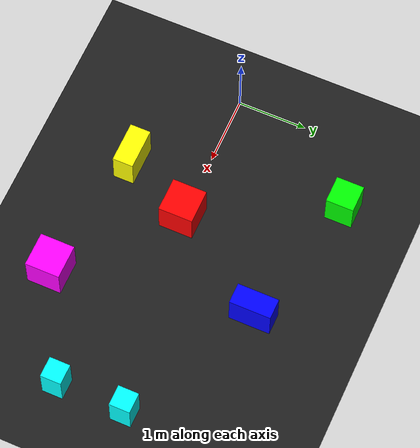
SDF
<?xml version="1.0" ?>
<sdf version="1.4">
  <world name="black_ground_world">

    <!-- Custom black ground -->
    <model name="black_ground">
      <static>true</static>
      <link name="ground_link">
        <collision name="ground_collision">
          <geometry>
            <plane>
              <size>50 50</size>
            </plane>
          </geometry>
        </collision>
        <visual name="ground_visual">
          <geometry>
            <plane>
              <size>50 50</size>
            </plane>
          </geometry>
          <material>
            <script>
              <uri>file://media/materials/scripts/gazebo.material</uri>
              <name>Gazebo/Black</name>
            </script>
          </material>
        </visual>
      </link>
    </model>

        <!-- Central obstacle cluster -->
    <model name="obstacle_center">
      <static>true</static>
      <pose>2.0 0 0.25 0 0 0</pose>
      <link name="link">
        <collision name="collision">
          <geometry>
            <box>
              <size>0.5 0.5 0.5</size>
            </box>
          </geometry>
        </collision>
        <visual name="visual">
          <geometry>
            <box>
              <size>0.5 0.5 0.5</size>
            </box>
          </geometry>
          <material>
            <ambient>1 0 0 1</ambient>
            <diffuse>1 0 0 1</diffuse>
          </material>
        </visual>
      </link>
    </model>

    <!-- Left side obstacles -->
    <model name="obstacle_left_1">
      <static>true</static>
      <pose>1.0 2 0.25 0 0 0</pose>
      <link name="link">
        <collision name="collision">
          <geometry>
            <box>
              <size>0.4 0.4 0.5</size>
            </box>
          </geometry>
        </collision>
        <visual name="visual">
          <geometry>
            <box>
              <size>0.4 0.4 0.5</size>
            </box>
          </geometry>
          <material>
            <ambient>0 1 0 1</ambient>
            <diffuse>0 1 0 1</diffuse>
          </material>
        </visual>
      </link>
    </model>

    <model name="obstacle_left_2">
      <static>true</static>
      <pose>3.0 1.5 0.25 0 0 0</pose>
      <link name="link">
        <collision name="collision">
          <geometry>
            <box>
              <size>0.3 0.6 0.5</size>
            </box>
          </geometry>
        </collision>
        <visual name="visual">
          <geometry>
            <box>
              <size>0.3 0.6 0.5</size>
            </box>
          </geometry>
          <material>
            <ambient>0 0 1 1</ambient>
            <diffuse>0 0 1 1</diffuse>
          </material>
        </visual>
      </link>
    </model>

    <!-- Right side obstacles -->
    <model name="obstacle_right_1">
      <static>true</static>
      <pose>1.5 -1.0 0.25 0 0 0</pose>
      <link name="link">
        <collision name="collision">
          <geometry>
            <box>
              <size>0.6 0.3 0.5</size>
            </box>
          </geometry>
        </collision>
        <visual name="visual">
          <geometry>
            <box>
              <size>0.6 0.3 0.5</size>
            </box>
          </geometry>
          <material>
            <ambient>1 1 0 1</ambient>
            <diffuse>1 1 0 1</diffuse>
          </material>
        </visual>
      </link>
    </model>

    <model name="obstacle_right_2">
      <static>true</static>
      <pose>3.5 -1.3 0.25 0 0 0</pose>
      <link name="link">
        <collision name="collision">
          <geometry>
            <box>
              <size>0.5 0.5 0.5</size>
            </box>
          </geometry>
        </collision>
        <visual name="visual">
          <geometry>
            <box>
              <size>0.5 0.5 0.5</size>
            </box>
          </geometry>
          <material>
            <ambient>1 0 1 1</ambient>
            <diffuse>1 0 1 1</diffuse>
          </material>
        </visual>
      </link>
    </model>

    <!-- Narrow passage -->
    <model name="obstacle_gate_1">
      <static>true</static>
      <pose>5.0 0.5 0.25 0 0 0</pose>
      <link name="link">
        <collision name="collision">
          <geometry>
            <box>
              <size>0.3 0.3 0.5</size>
            </box>
          </geometry>
        </collision>
        <visual name="visual">
          <geometry>
            <box>
              <size>0.3 0.3 0.5</size>
            </box>
          </geometry>
          <material>
            <ambient>0 1 1 1</ambient>
            <diffuse>0 1 1 1</diffuse>
          </material>
        </visual>
      </link>
    </model>

    <model name="obstacle_gate_2">
      <static>true</static>
      <pose>5.0 -0.5 0.25 0 0 0</pose>
      <link name="link">
        <collision name="collision">
          <geometry>
            <box>
              <size>0.3 0.3 0.5</size>
            </box>
          </geometry>
        </collision>
        <visual name="visual">
          <geometry>
            <box>
              <size>0.3 0.3 0.5</size>
            </box>
          </geometry>
          <material>
            <ambient>0 1 1 1</ambient>
            <diffuse>0 1 1 1</diffuse>
          </material>
        </visual>
      </link>
    </model>

    <!-- Light source -->
    <include>
      <uri>model://sun</uri>
    </include>

    <!-- World camera -->
    <gui fullscreen='0'>
      <camera name='world_camera'>
        <pose>4.927360 -4.376610 3.740080 0.000000 0.275643 2.356190</pose>
        <view_controller>orbit</view_controller>
      </camera>
    </gui>

  </world>
</sdf>
